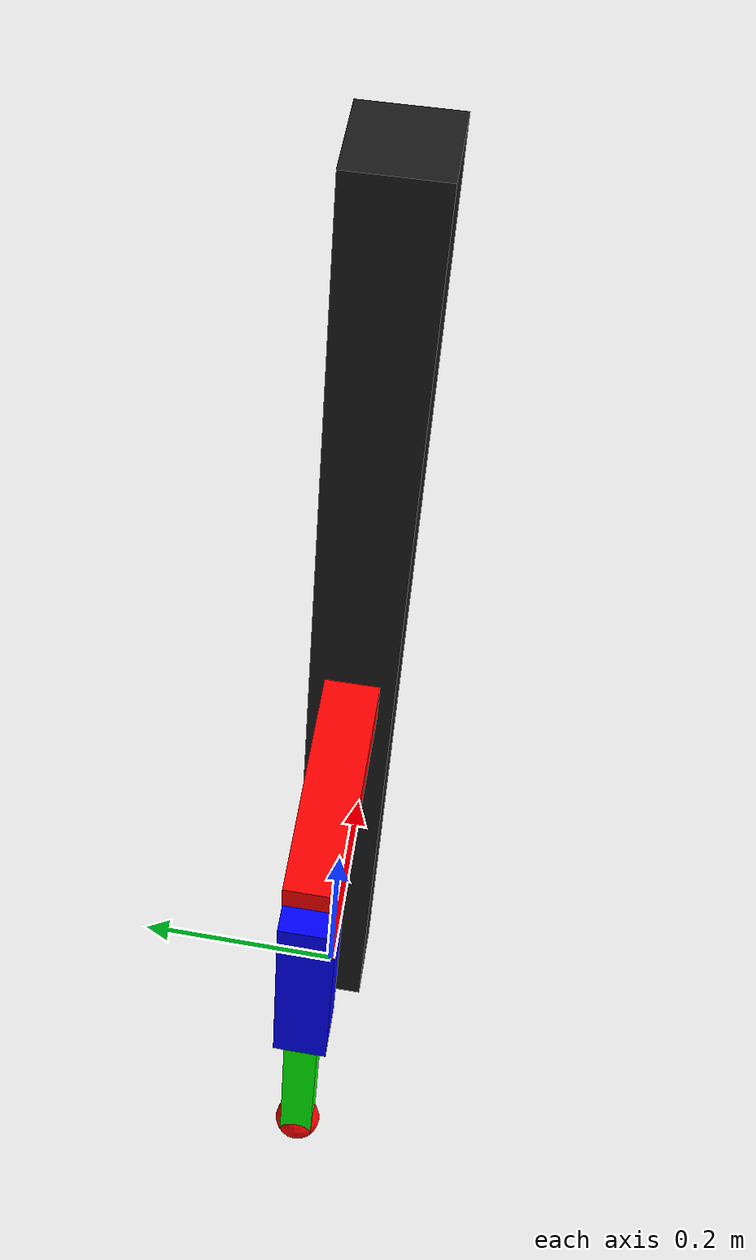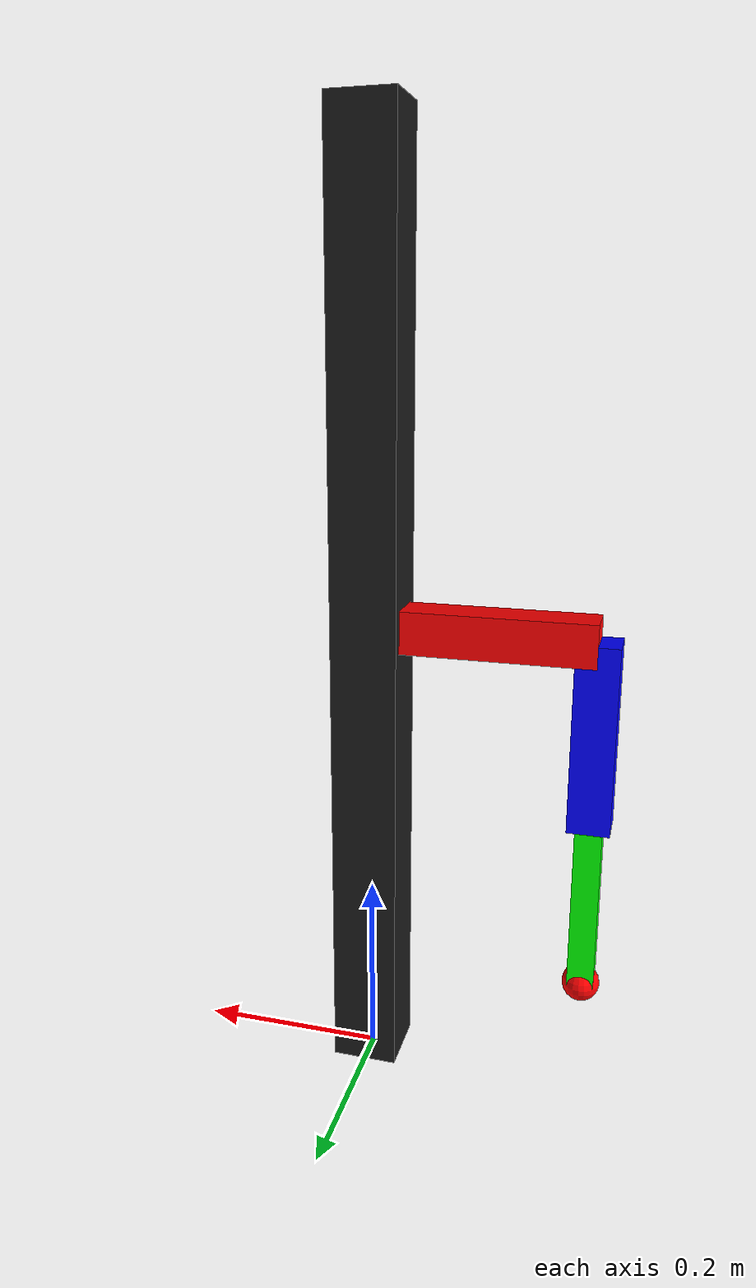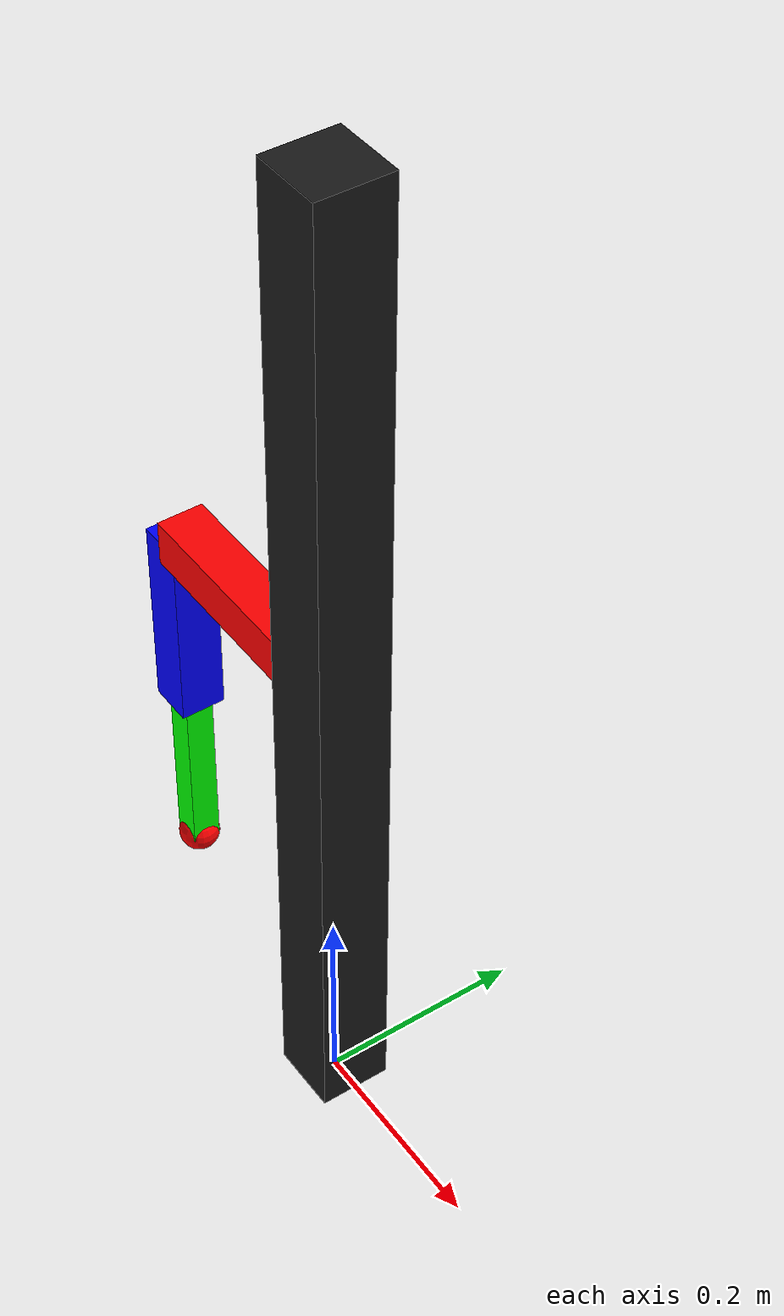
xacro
<?xml version="1.0"?>

<robot name="hello_leg" xmlns:xacro="http://www.ros.org/wiki/xacro">

    <!-- Define parameters -->
    <xacro:property name="PI" value="3.14159265359"/>
    <xacro:property name="density" value="50000"/>
    <xacro:property name="bodyLength" value="0.07"/>
    <xacro:property name="bodyWidth" value="0.07"/>
    <xacro:property name="bodyHeight" value="1.0"/>
    <xacro:property name="bodyMass" value="${density * (bodyLength*bodyWidth*bodyHeight)}"/>
    <xacro:property name="hipLength" value="0.199"/>
    <xacro:property name="hipWidth" value="0.045"/>
    <xacro:property name="hipHeight" value="0.045"/>
    <xacro:property name="hipMass" value="${density * (hipLength*hipWidth*hipHeight)}"/>
    <xacro:property name="upperLength" value="0.044"/>
    <xacro:property name="upperWidth" value="0.044"/>
    <xacro:property name="upperHeight" value="0.198"/>
    <xacro:property name="upperMass" value="${density * (upperLength*upperWidth*upperHeight)}"/>
    <xacro:property name="lowerLength" value="0.028"/>
    <xacro:property name="lowerWidth" value="0.028"/>
    <xacro:property name="lowerHeight" value="0.183"/>
    <xacro:property name="lowerMass" value="${density * (lowerLength*lowerWidth*lowerHeight)}"/>
    <xacro:property name="tipRadius" value="0.02"/>
    <xacro:property name="tipMass" value="${density * 4/3*PI*(tipRadius*tipRadius*tipRadius)}"/>
    <xacro:property name="jointLowerLimit" value="${-PI/2}"/>
    <xacro:property name="jointUpperLimit" value="${PI/2}"/>
    <xacro:property name="jointEffortLimit" value="50"/>
    <xacro:property name="jointSpeedLimit" value="100"/>

    <!-- Define materials -->
    <material name="darkgray">
        <color rgba="0.1 0.1 0.1 1.0"/>
    </material>
    <material name="silver">
        <color rgba="0.3 0.3 0.3 1.0"/>
    </material>
    <material name="red">
        <color rgba="1 0 0 1"/>
    </material>
    <material name="blue">
        <color rgba="0 0 1 1"/>
    </material>
    <material name="green">
        <color rgba="0 1 0 1"/>
    </material>

    <!-- World -->
    <link name="world"/>

    <joint name="world_to_base_link" type="fixed">
        <parent link="world"/>
        <child link="base_link"/>
        <origin xyz="0 0 0" rpy="0 0 0"/>
    </joint>

    <!-- Base -->
    <link name="base_link">
        <visual>
            <origin rpy="0 0 0" xyz="0 0 ${bodyHeight/2}"/>
            <geometry>
                <box size="${bodyLength} ${bodyWidth} ${bodyHeight}"/>
            </geometry>
            <material name="darkgray"/>
        </visual>
        <collision>
            <origin rpy="0 0 0" xyz="0 0 ${bodyHeight/2}"/>
            <geometry>
                <box size="${bodyLength} ${bodyWidth} ${bodyHeight}"/>
            </geometry>
        </collision>
        <inertial>
            <mass value="${bodyMass}"/>
            <inertia
                ixx="${bodyMass / 12.0 * (bodyWidth*bodyWidth + bodyHeight*bodyHeight)}"  ixy="0.0"  ixz="0.0"
                iyy="${bodyMass / 12.0 * (bodyHeight*bodyHeight + bodyLength*bodyLength)}" iyz="0.0"
                izz="${bodyMass / 12.0 * (bodyLength*bodyLength + bodyWidth*bodyWidth)}" />
        </inertial>
    </link>

    <joint name="base_to_hip_joint" type="revolute">
        <parent link="base_link"/>
        <child link="hip_link"/>
        <origin xyz="${-bodyLength/2} 0 ${bodyHeight/2}"/>
        <limit effort="${jointEffortLimit}" lower="${jointLowerLimit}" upper="${jointUpperLimit}" velocity="${jointSpeedLimit}"/>
        <axis xyz="1 0 0"/>
    </joint>

    <!-- Hip -->
    <link name="hip_link">
        <visual>
            <origin rpy="0 0 0" xyz="${-hipLength/2} 0 0"/>
            <geometry>
                <box size="${hipLength} ${hipWidth} ${hipHeight}"/>
            </geometry>
            <material name="red"/>
        </visual>
        <collision>
            <origin rpy="0 0 0" xyz="${-hipLength/2} 0 0"/>
            <geometry>
                <box size="${hipLength} ${hipWidth} ${hipHeight}"/>
            </geometry>
        </collision>
        <inertial>
            <mass value="${hipMass}"/>
            <inertia
                ixx="${hipMass / 12.0 * (hipWidth*hipWidth + hipHeight*hipHeight)}"  ixy="0.0"  ixz="0.0"
                iyy="${hipMass / 12.0 * (hipHeight*hipHeight + hipLength*hipLength)}" iyz="0.0"
                izz="${hipMass / 12.0 * (hipLength*hipLength + hipWidth*hipWidth)}" />
        </inertial>
    </link>

    <joint name="hip_to_upper_joint" type="revolute">
        <parent link="hip_link"/>
        <child link="upper_link"/>
        <origin xyz="${-hipLength} 0 0"/>
        <limit effort="${jointEffortLimit}" lower="${jointLowerLimit}" upper="${jointUpperLimit}" velocity="${jointSpeedLimit}"/>
        <axis xyz="0 1 0"/>
    </joint>

    <!-- Upper -->
    <link name="upper_link">
        <visual>
            <origin rpy="0 0 0" xyz="0 0 ${-upperHeight/2}"/>
            <geometry>
                <box size="${upperLength} ${upperWidth} ${upperHeight}"/>
            </geometry>
            <material name="blue"/>
        </visual>
        <collision>
            <origin rpy="0 0 0" xyz="0 0 ${-upperHeight/2}"/>
            <geometry>
                <box size="${upperLength} ${upperWidth} ${upperHeight}"/>
            </geometry>
        </collision>
        <inertial>
            <mass value="${upperMass}"/>
            <inertia
                ixx="${upperMass / 12.0 * (upperWidth*upperWidth + upperHeight*upperHeight)}"  ixy="0.0"  ixz="0.0"
                iyy="${upperMass / 12.0 * (upperHeight*upperHeight + upperLength*upperLength)}" iyz="0.0"
                izz="${upperMass / 12.0 * (upperLength*upperLength + upperWidth*upperWidth)}" />
        </inertial>
    </link>

    <joint name="upper_to_lower_joint" type="revolute">
        <parent link="upper_link"/>
        <child link="lower_link"/>
        <origin xyz="0 0 ${-upperHeight}"/>
        <limit effort="${jointEffortLimit}" lower="${jointLowerLimit}" upper="${jointUpperLimit}" velocity="${jointSpeedLimit}"/>
        <axis xyz="0 1 0"/>
    </joint>

    <!-- Lower -->
    <link name="lower_link">
        <visual>
            <origin rpy="0 0 0" xyz="0 0 ${-lowerHeight/2}"/>
            <geometry>
                <box size="${lowerLength} ${lowerWidth} ${lowerHeight}"/>
            </geometry>
            <material name="green"/>
        </visual>
        <collision>
            <origin rpy="0 0 0" xyz="0 0 ${-lowerHeight/2}"/>
            <geometry>
                <box size="${lowerLength} ${lowerWidth} ${lowerHeight}"/>
            </geometry>
        </collision>
        <inertial>
            <mass value="${lowerMass}"/>
            <inertia
                ixx="${lowerMass / 12.0 * (lowerWidth*lowerWidth + lowerHeight*lowerHeight)}"  ixy="0.0"  ixz="0.0"
                iyy="${lowerMass / 12.0 * (lowerHeight*lowerHeight + lowerLength*lowerLength)}" iyz="0.0"
                izz="${lowerMass / 12.0 * (lowerLength*lowerLength + lowerWidth*lowerWidth)}" />
        </inertial>
    </link>

    <joint name="lower_to_tip_link" type="fixed">
        <parent link="lower_link"/>
        <child link="tip_link"/>
        <origin xyz="0 0 ${-lowerHeight}" rpy="0 0 0"/>
    </joint>

    <!-- Tip -->
    <link name="tip_link">
        <visual>
            <origin rpy="0 0 0" xyz="0 0 0"/>
            <geometry>
                <sphere radius="${tipRadius}"/>
            </geometry>
            <material name="red"/>
        </visual>
        <collision>
            <origin rpy="0 0 0" xyz="0 0 0"/>
            <geometry>
                <sphere radius="${tipRadius}"/>
            </geometry>
        </collision>
        <inertial>
            <mass value="${tipMass}"/>
            <inertia
                ixx="${2/5 * tipMass * (tipRadius*tipRadius)}"  ixy="0.0"  ixz="0.0"
                iyy="${2/5 * tipMass * (tipRadius*tipRadius)}" iyz="0.0"
                izz="${2/5 * tipMass * (tipRadius*tipRadius)}" />
        </inertial>
    </link>

    <!-- Import all Gazebo-customization elements, including Gazebo colors -->
    <xacro:include filename="$(find hello_leg_description)/urdf/hello_leg.gazebo"/>

</robot>
